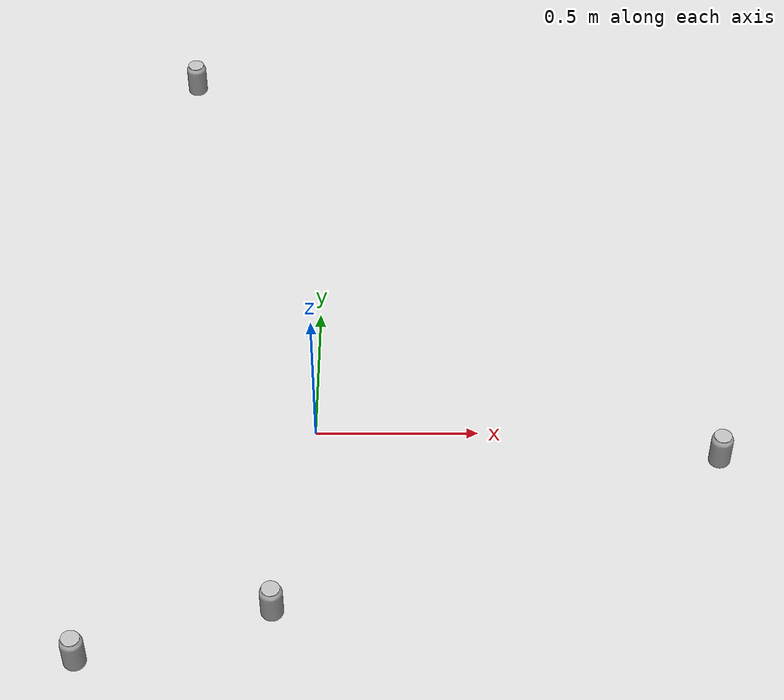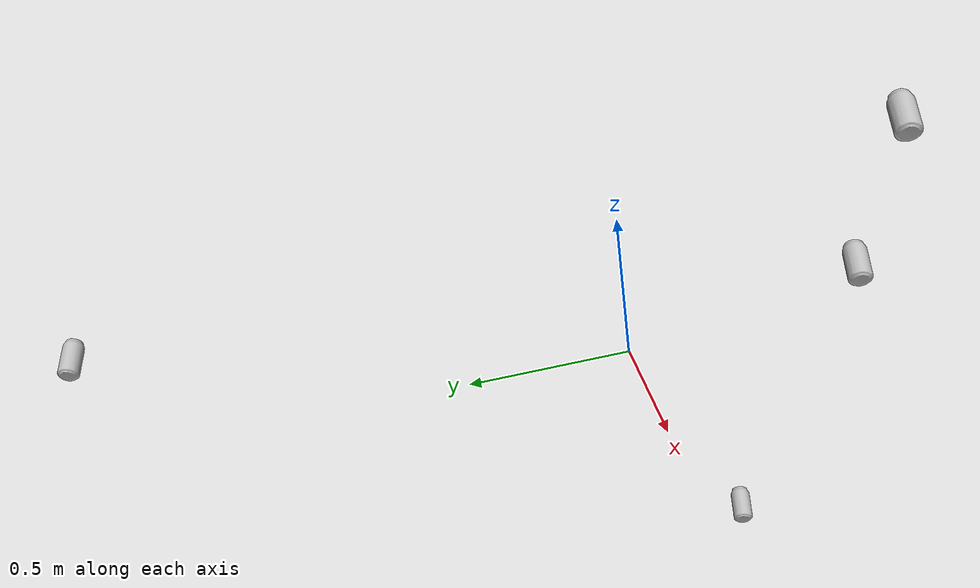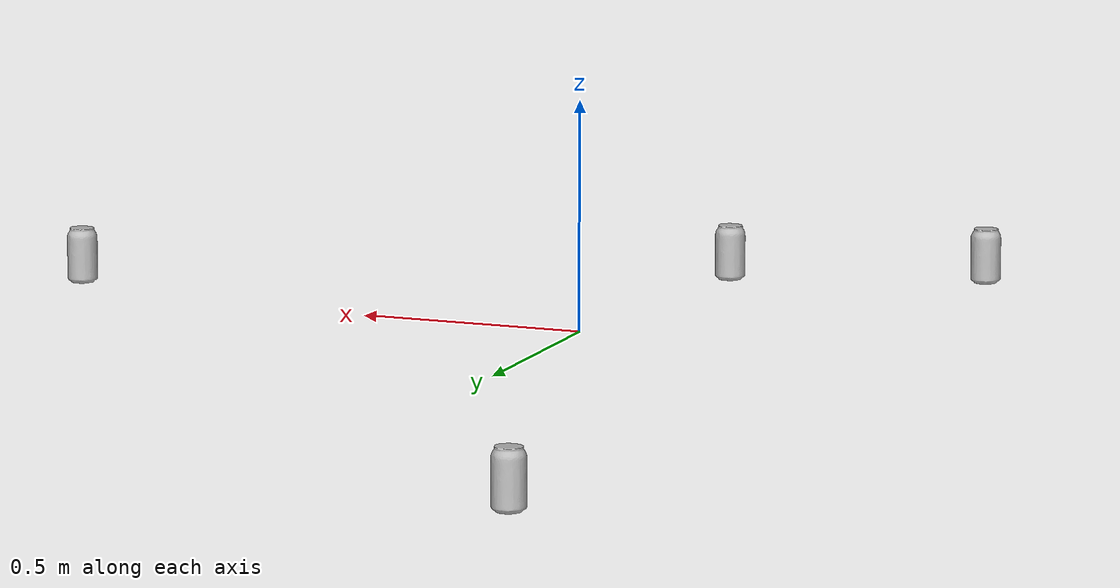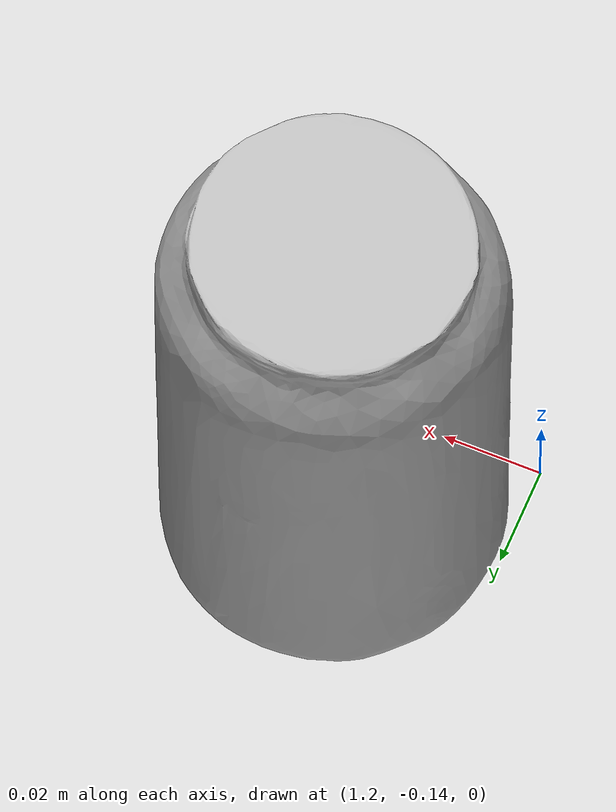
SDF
<?xml version='1.0'?>
<sdf version='1.7'>
  <model name='world1'>
    <model name='coke_can'>
      <link name='link'>
        <inertial>
          <pose>0 0 0.06 0 -0 0</pose>
          <mass>0.39</mass>
          <inertia>
            <ixx>0.00055575</ixx>
            <ixy>0</ixy>
            <ixz>0</ixz>
            <iyy>0.00055575</iyy>
            <iyz>0</iyz>
            <izz>0.0001755</izz>
          </inertia>
        </inertial>
        <collision name='collision'>
          <pose>0.003937 0.004724 -0.18 0 -0 0</pose>
          <geometry>
            <mesh>
              <uri>model://coke_can/meshes/coke_can.dae</uri>
            </mesh>
          </geometry>
          <surface>
            <friction>
              <ode>
                <mu>1</mu>
                <mu2>1</mu2>
              </ode>
            </friction>
            <contact>
              <ode>
                <kp>1e+07</kp>
                <kd>1</kd>
                <min_depth>0.001</min_depth>
                <max_vel>0.1</max_vel>
              </ode>
            </contact>
          </surface>
        </collision>
        <visual name='visual'>
          <pose>0.003937 0.004724 -0.18 0 -0 0</pose>
          <geometry>
            <mesh>
              <uri>model://coke_can/meshes/coke_can.dae</uri>
            </mesh>
          </geometry>
        </visual>
      </link>
      <pose>-0.103639 -0.671024 0 0 -0 0</pose>
    </model>
    <model name='coke_can_0'>
      <link name='link'>
        <inertial>
          <pose>0 0 0.06 0 -0 0</pose>
          <mass>0.39</mass>
          <inertia>
            <ixx>0.00055575</ixx>
            <ixy>0</ixy>
            <ixz>0</ixz>
            <iyy>0.00055575</iyy>
            <iyz>0</iyz>
            <izz>0.0001755</izz>
          </inertia>
        </inertial>
        <collision name='collision'>
          <pose>0.003937 0.004724 -0.18 0 -0 0</pose>
          <geometry>
            <mesh>
              <uri>model://coke_can/meshes/coke_can.dae</uri>
            </mesh>
          </geometry>
          <surface>
            <friction>
              <ode>
                <mu>1</mu>
                <mu2>1</mu2>
              </ode>
            </friction>
            <contact>
              <ode>
                <kp>1e+07</kp>
                <kd>1</kd>
                <min_depth>0.001</min_depth>
                <max_vel>0.1</max_vel>
              </ode>
            </contact>
          </surface>
        </collision>
        <visual name='visual'>
          <pose>0.003937 0.004724 -0.18 0 -0 0</pose>
          <geometry>
            <mesh>
              <uri>model://coke_can/meshes/coke_can.dae</uri>
            </mesh>
          </geometry>
        </visual>
      </link>
      <pose>-0.648955 -0.83796 0 0 -0 0</pose>
    </model>
    <model name='coke_can_1'>
      <link name='link'>
        <inertial>
          <pose>0 0 0.06 0 -0 0</pose>
          <mass>0.39</mass>
          <inertia>
            <ixx>0.00055575</ixx>
            <ixy>0</ixy>
            <ixz>0</ixz>
            <iyy>0.00055575</iyy>
            <iyz>0</iyz>
            <izz>0.0001755</izz>
          </inertia>
        </inertial>
        <collision name='collision'>
          <pose>0.003937 0.004724 -0.18 0 -0 0</pose>
          <geometry>
            <mesh>
              <uri>model://coke_can/meshes/coke_can.dae</uri>
            </mesh>
          </geometry>
          <surface>
            <friction>
              <ode>
                <mu>1</mu>
                <mu2>1</mu2>
              </ode>
            </friction>
            <contact>
              <ode>
                <kp>1e+07</kp>
                <kd>1</kd>
                <min_depth>0.001</min_depth>
                <max_vel>0.1</max_vel>
              </ode>
            </contact>
          </surface>
        </collision>
        <visual name='visual'>
          <pose>0.003937 0.004724 -0.18 0 -0 0</pose>
          <geometry>
            <mesh>
              <uri>model://coke_can/meshes/coke_can.dae</uri>
            </mesh>
          </geometry>
        </visual>
      </link>
      <pose>-0.480373 1.62223 0 0 -0 0</pose>
    </model>
    <model name='coke_can_2'>
      <link name='link'>
        <inertial>
          <pose>0 0 0.06 0 -0 0</pose>
          <mass>0.39</mass>
          <inertia>
            <ixx>0.00055575</ixx>
            <ixy>0</ixy>
            <ixz>0</ixz>
            <iyy>0.00055575</iyy>
            <iyz>0</iyz>
            <izz>0.0001755</izz>
          </inertia>
        </inertial>
        <collision name='collision'>
          <pose>0.003937 0.004724 -0.18 0 -0 0</pose>
          <geometry>
            <mesh>
              <uri>model://coke_can/meshes/coke_can.dae</uri>
            </mesh>
          </geometry>
          <surface>
            <friction>
              <ode>
                <mu>1</mu>
                <mu2>1</mu2>
              </ode>
            </friction>
            <contact>
              <ode>
                <kp>1e+07</kp>
                <kd>1</kd>
                <min_depth>0.001</min_depth>
                <max_vel>0.1</max_vel>
              </ode>
            </contact>
          </surface>
        </collision>
        <visual name='visual'>
          <pose>0.003937 0.004724 -0.18 0 -0 0</pose>
          <geometry>
            <mesh>
              <uri>model://coke_can/meshes/coke_can.dae</uri>
            </mesh>
          </geometry>
        </visual>
      </link>
      <pose>1.23297 -0.113245 0 0 -0 0</pose>
    </model>
    <static>0</static>
    <allow_auto_disable>1</allow_auto_disable>
  </model>
</sdf>
